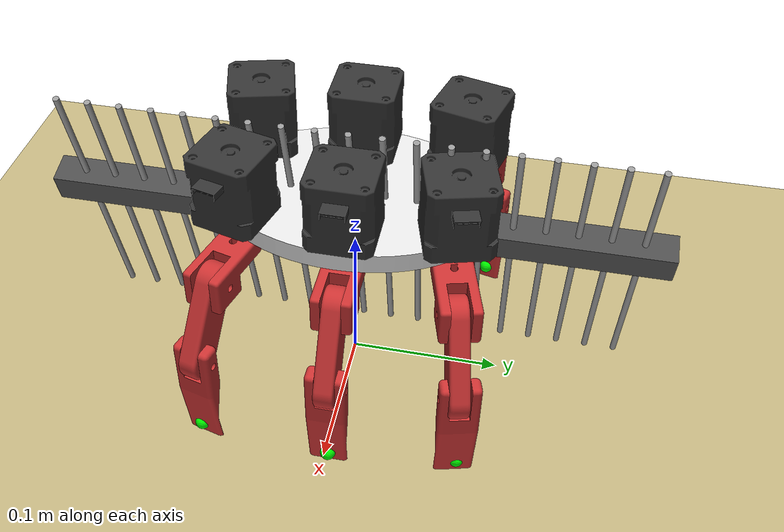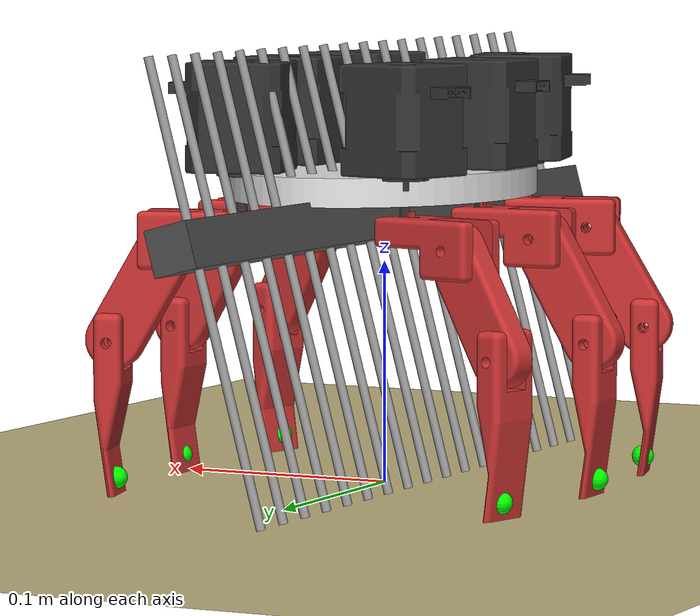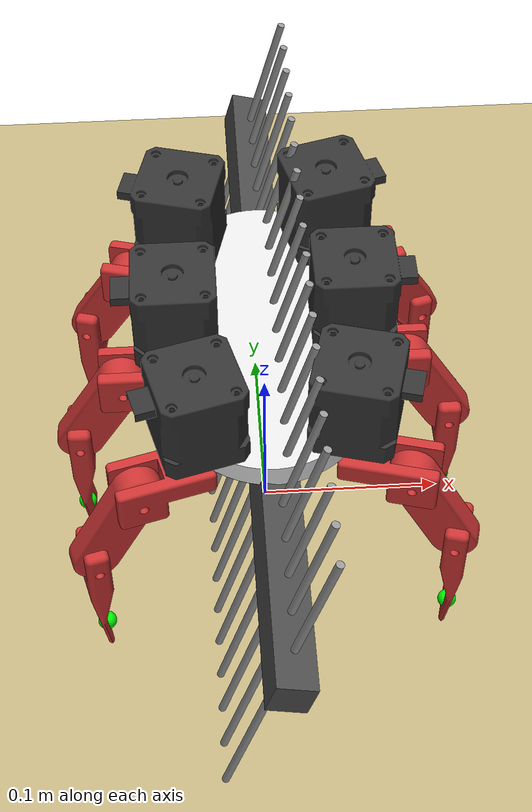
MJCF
<!-- runnning the enviorment: source mujoco_env/bin/activate -->
<!-- running the simulation: ./mujoco_env/bin/mjpython simulate_crab.py -->

<mujoco model="crab_leg_full_assembly">
    <compiler angle="degree" coordinate="local" meshdir="meshes/"/>
    <option gravity="0 0 -9.81" integrator="RK4" timestep="0.002"/>

    <asset>
        <material name="crab_r" rgba="0.8 0.2 0.2 1"/>
        <material name="crab_l" rgba="0.2 0.8 0.8 1"/>
        <material name="motor_grey" rgba="0.2 0.2 0.2 1"/>
        <material name="shell_white" rgba="0.9 0.9 0.9 1"/>
        <material name="sand_ground" rgba="0.76 0.70 0.50 1"/>

        <mesh name="shell_mesh" file="Shell.stl" scale="0.0254 0.0254 0.0254"/>
        <mesh name="nema17_mesh" file="Nema17.stl" scale="0.0254 0.0254 0.0254"/>
        <mesh name="femur_mesh" file="Femur.stl" scale="0.0254 0.0254 0.0254"/>
        <mesh name="merus_mesh" file="Merus.stl" scale="0.0254 0.0254 0.0254"/>
        <mesh name="dactyl_mesh" file="Dactyl.stl" scale="0.0254 0.0254 0.0254"/>
    </asset>

    <worldbody>
        <light diffuse=".5 .5 .5" pos="0 0 3" dir="0 0 -1"/>
        <!-- Collision ground (z=0) - where sand forces apply -->
        <geom name="ground" type="plane" size="2 2 0.1" material="sand_ground" contype="1" conaffinity="1"
              solref="0.04 1.5" solimp="0.9 0.99 0.001" friction="1.0 0.005 0.0001"/>
        <!-- Visual surface ground (z=0.01) - at penetration threshold, shows leg sinkage effect -->
        <geom name="ground_visual" type="plane" pos="0 0 0.01" size="2 2 0.1" material="sand_ground" contype="0" conaffinity="0"/>

        <body name="base_shell" pos="0 0 0.13">
            <freejoint/>
            <!-- Combined mass of motors, wood base, and electronics -->
            <geom name="shell_visual" type="mesh" mesh="shell_mesh" material="shell_white" mass="2.1" />
            <body name="sifter_assembly" pos="0 0 -0.01" euler="0 15 0">
                <geom name="rake_bar" type="box" size="0.01 0.20 0.01" rgba="0.3 0.3 0.3 1" mass="0.07"/>

                <geom name="tine_0" type="cylinder" size="0.002 0.10" pos="0 0.00 -0.02" euler="0 0 0" rgba="0.6 0.6 0.6 1" mass="0.005"/>

                <geom name="tine_l1" type="cylinder" size="0.002 0.10" pos="0 -0.02 -0.02" euler="0 0 0" rgba="0.6 0.6 0.6 1" mass="0.005"/>
                <geom name="tine_l2" type="cylinder" size="0.002 0.10" pos="0 -0.04 -0.02" euler="0 0 0" rgba="0.6 0.6 0.6 1" mass="0.005"/>
                <geom name="tine_l3" type="cylinder" size="0.002 0.10" pos="0 -0.06 -0.02" euler="0 0 0" rgba="0.6 0.6 0.6 1" mass="0.005"/>
                <geom name="tine_l4" type="cylinder" size="0.002 0.10" pos="0 -0.08 -0.02" euler="0 0 0" rgba="0.6 0.6 0.6 1" mass="0.005"/>
                <geom name="tine_l5" type="cylinder" size="0.002 0.10" pos="0 -0.10 -0.02" euler="0 0 0" rgba="0.6 0.6 0.6 1" mass="0.005"/>
                <geom name="tine_l6" type="cylinder" size="0.002 0.10" pos="0 -0.12 -0.02" euler="0 0 0" rgba="0.6 0.6 0.6 1" mass="0.005"/>
                <geom name="tine_l7" type="cylinder" size="0.002 0.10" pos="0 -0.14 -0.02" euler="0 0 0" rgba="0.6 0.6 0.6 1" mass="0.005"/>
                <geom name="tine_l8" type="cylinder" size="0.002 0.10" pos="0 -0.16 -0.02" euler="0 0 0" rgba="0.6 0.6 0.6 1" mass="0.005"/>
                <geom name="tine_l9" type="cylinder" size="0.002 0.10" pos="0 -0.18 -0.02" euler="0 0 0" rgba="0.6 0.6 0.6 1" mass="0.005"/>

                <geom name="tine_r1" type="cylinder" size="0.002 0.10" pos="0 0.02 -0.02" euler="0 0 0" rgba="0.6 0.6 0.6 1" mass="0.005"/>
                <geom name="tine_r2" type="cylinder" size="0.002 0.10" pos="0 0.04 -0.02" euler="0 0 0" rgba="0.6 0.6 0.6 1" mass="0.005"/>
                <geom name="tine_r3" type="cylinder" size="0.002 0.10" pos="0 0.06 -0.02" euler="0 0 0" rgba="0.6 0.6 0.6 1" mass="0.005"/>
                <geom name="tine_r4" type="cylinder" size="0.002 0.10" pos="0 0.08 -0.02" euler="0 0 0" rgba="0.6 0.6 0.6 1" mass="0.005"/>
                <geom name="tine_r5" type="cylinder" size="0.002 0.10" pos="0 0.10 -0.02" euler="0 0 0" rgba="0.6 0.6 0.6 1" mass="0.005"/>
                <geom name="tine_r6" type="cylinder" size="0.002 0.10" pos="0 0.12 -0.02" euler="0 0 0" rgba="0.6 0.6 0.6 1" mass="0.005"/>
                <geom name="tine_r7" type="cylinder" size="0.002 0.10" pos="0 0.14 -0.02" euler="0 0 0" rgba="0.6 0.6 0.6 1" mass="0.005"/>
                <geom name="tine_r8" type="cylinder" size="0.002 0.10" pos="0 0.16 -0.02" euler="0 0 0" rgba="0.6 0.6 0.6 1" mass="0.005"/>
                <geom name="tine_r9" type="cylinder" size="0.002 0.10" pos="0 0.18 -0.02" euler="0 0 0" rgba="0.6 0.6 0.6 1" mass="0.005"/>
            </body>
            <!-- RIGHT MIDDLE LEG -->
            <body name="motor_rm" pos="0 -0.025 0.04" euler="0 90 0">
                <geom name="motor_rm_vis" type="mesh" mesh="nema17_mesh" material="motor_grey"/>
                <body name="femur_rm" pos="0.035 0.041 0.07">
                    <joint name="hip_rm" type="hinge" axis="1 0 0" pos="0 -0.015 -0.03" range="-90 90"/>
                    <geom name="femur_rm_vis" type="mesh" mesh="femur_mesh" euler="0 180 0" material="crab_r"/>
                    <body name="merus_rm" pos="0.04 -0.025 0.03">
                        <joint name="knee_rm" type="hinge" axis="0 1 0" pos="-0.02 0 -0.02" range="-90 90"/>
                        <geom name="merus_rm_vis" type="mesh" mesh="merus_mesh" euler="0 60 90" material="crab_r"/>
                        <body name="dactyl_rm" pos="0.04 0.025 0.0075">
                            <joint name="ankle_rm" type="hinge" axis="0 1 0" pos="-0.01 -0.02 -0.005" range="-60 60"/>
                            <geom name="dactyl_rm_vis" type="mesh" mesh="dactyl_mesh" euler="0 -90 0" material="crab_r" contype="1" conaffinity="1"/>
                            <site name="tip_rm" pos="0.048 -0.0125 -0.005" size="0.005" rgba="0 1 0 1"/>
                        </body>
                    </body>
                </body>
            </body>

            <!-- RIGHT BACK LEG -->
            <body name="motor_rb" pos="-0.01 -0.08 0.04" euler="0 90 0">
                <geom name="motor_rb_vis" type="mesh" mesh="nema17_mesh" euler="15 0 0" material="motor_grey"/>
                <body name="femur_rb" pos="0.035 0.02 0.08">
                    <joint name="hip_rb" type="hinge" axis="1 0 0" pos="0 -0.015 -0.03" range="-90 90"/>
                    <geom name="femur_rb_vis" type="mesh" mesh="femur_mesh" euler="15 180 0" material="crab_r"/>
                    <body name="merus_rb" pos="0.04 -0.032 0.02">
                        <joint name="knee_rb" type="hinge" axis="0 1 0" pos="-0.02 0 -0.02" range="-90 90"/>
                        <geom name="merus_rb_vis" type="mesh" mesh="merus_mesh" euler="15 60 90" material="crab_r"/>
                        <body name="dactyl_rb" pos="0.04 0.022 0.015">
                            <joint name="ankle_rb" type="hinge" axis="0 1 0" pos="-0.01 -0.02 -0.005" range="-60 60"/>
                            <geom name="dactyl_rb_vis" type="mesh" mesh="dactyl_mesh" euler="15 -90 0" material="crab_r" contype="1" conaffinity="1"/>
                            <site name="tip_rb" pos="0.048 -0.0125 -0.01" size="0.005" rgba="0 1 0 1"/>
                        </body>
                    </body>
                </body>
            </body>
            <!-- RIGHT FRONT LEG -->
            <body name="motor_rf" pos="0 0.03 0.04" euler="0 90 0">
                <geom name="motor_rf_vis" type="mesh" mesh="nema17_mesh" euler="-15 0 0" material="motor_grey"/>
                <body name="femur_rf" pos="0.035 0.057 0.06">
                    <joint name="hip_rf" type="hinge" axis="1 0 0" pos="0 -0.015 -0.03" range="-90 90"/>
                    <geom name="femur_rf_vis" type="mesh" mesh="femur_mesh" euler="-15 180 0" material="crab_r"/>
                    <body name="merus_rf" pos="0.04 -0.0175 0.035">
                        <joint name="knee_rf" type="hinge" axis="0 1 0" pos="-0.02 0 -0.02" range="-90 90"/>
                        <geom name="merus_rf_vis" type="mesh" mesh="merus_mesh" euler="-15 60 90" material="crab_r"/>
                        <body name="dactyl_rf" pos="0.04 0.0275 0.001">
                            <joint name="ankle_rf" type="hinge" axis="0 1 0" pos="-0.01 -0.02 -0.005" range="-60 60"/>
                            <geom name="dactyl_rf_vis" type="mesh" mesh="dactyl_mesh" euler="-15 -90 0" material="crab_r" contype="1" conaffinity="1"/>
                            <site name="tip_rf" pos="0.048 -0.0125 -0.005" size="0.005" rgba="0 1 0 1"/>
                        </body>
                    </body>
                </body>
            </body>

            <!-- LEFT MIDDLE LEG — mirrors rm: motor euler "0 -90 180" handles
                the left-side flip; all child positions are identical to rm. -->
            <body name="motor_lm" pos="0 0.025 0.04" euler="0 -90 180">
                <geom name="motor_lm_vis" type="mesh" mesh="nema17_mesh" material="motor_grey"/>
                <body name="femur_lm" pos="0.035 0.041 0.07">
                    <joint name="hip_lm" type="hinge" axis="1 0 0" pos="0 -0.015 -0.03" range="-90 90"/>
                    <geom name="femur_lm_vis" type="mesh" mesh="femur_mesh" euler="0 180 0" material="crab_r"/>
                    <body name="merus_lm" pos="0.04 -0.025 0.03">
                        <joint name="knee_lm" type="hinge" axis="0 1 0" pos="-0.02 0 -0.02" range="-90 90"/>
                        <geom name="merus_lm_vis" type="mesh" mesh="merus_mesh" euler="0 60 90" material="crab_r"/>
                        <body name="dactyl_lm" pos="0.04 0.025 0.0075">
                            <joint name="ankle_lm" type="hinge" axis="0 1 0" pos="-0.01 -0.02 -0.005" range="-60 60"/>
                            <geom name="dactyl_lm_vis" type="mesh" mesh="dactyl_mesh" euler="0 -90 0" material="crab_r" contype="1" conaffinity="1"/>
                            <site name="tip_lm" pos="0.048 -0.0125 -0.005" size="0.005" rgba="0 1 0 1"/>
                        </body>
                    </body>
                </body>
            </body>
        <!-- LEFT BACK LEG -->
            <body name="motor_lb" pos="0 -0.03 0.04" euler="0 -90 180">
                <geom name="motor_lb_vis" type="mesh" mesh="nema17_mesh" euler="-15 0 0" material="motor_grey"/>
                <body name="femur_lb" pos="0.035 0.057 0.06">
                    <joint name="hip_lb" type="hinge" axis="1 0 0" pos="0 -0.015 -0.03" range="-90 90"/>
                    <geom name="femur_lb_vis" type="mesh" mesh="femur_mesh" euler="-15 180 0" material="crab_r"/>
                    <body name="merus_lb" pos="0.04 -0.0175 0.035">
                        <joint name="knee_lb" type="hinge" axis="0 1 0" pos="-0.02 0 -0.02" range="-90 90"/>
                        <geom name="merus_lb_vis" type="mesh" mesh="merus_mesh" euler="-15 60 90" material="crab_r"/>
                        <body name="dactyl_lb" pos="0.04 0.0275 0.001">
                            <joint name="ankle_lb" type="hinge" axis="0 1 0" pos="-0.01 -0.02 -0.005" range="-60 60"/>
                            <geom name="dactyl_lb_vis" type="mesh" mesh="dactyl_mesh" euler="-15 -90 0" material="crab_r" contype="1" conaffinity="1"/>
                            <site name="tip_lb" pos="0.048 -0.0125 -0.005" size="0.005" rgba="0 1 0 1"/>
                        </body>
                    </body>
                </body>
            </body>

            <!-- LEFT FRONT LEG -->
            <body name="motor_lf" pos="0.01 0.08 0.04" euler="0 -90 180">
                <geom name="motor_lf_vis" type="mesh" mesh="nema17_mesh" euler="15 0 0" material="motor_grey"/>
                <body name="femur_lf" pos="0.035 0.02 0.08">
                    <joint name="hip_lf" type="hinge" axis="1 0 0" pos="0 -0.015 -0.03" range="-90 90"/>
                    <geom name="femur_l_vis" type="mesh" mesh="femur_mesh" euler="15 180 0" material="crab_r"/>
                    <body name="merus_lf" pos="0.04 -0.032 0.02">
                        <joint name="knee_lf" type="hinge" axis="0 1 0" pos="-0.02 0 -0.02" range="-90 90"/>
                        <geom name="merus_lf_vis" type="mesh" mesh="merus_mesh" euler="15 60 90" material="crab_r"/>
                        <body name="dactyl_lf" pos="0.04 0.022 0.015">
                            <joint name="ankle_lf" type="hinge" axis="0 1 0" pos="-0.01 -0.02 -0.005" range="-60 60"/>
                            <geom name="dactyl_lf_vis" type="mesh" mesh="dactyl_mesh" euler="15 -90 0" material="crab_r" contype="1" conaffinity="1"/>
                            <site name="tip_lf" pos="0.048 -0.0125 -0.01" size="0.005" rgba="0 1 0 1"/>
                        </body>
                    </body>
                </body>
            </body>
        </body>
    </worldbody>

    <actuator>
        <!-- Right Legs Actuators -->
        <position name="hip_rm_srv" joint="hip_rm" kp="80"/>
        <position name="knee_rm_srv" joint="knee_rm" kp="60"/>
        <position name="ankle_rm_srv" joint="ankle_rm" kp="60"/>
        <position name="hip_rb_srv" joint="hip_rb" kp="80"/>
        <position name="knee_rb_srv" joint="knee_rb" kp="60"/>
        <position name="ankle_rb_srv" joint="ankle_rb" kp="60"/>
        <position name="hip_rf_srv" joint="hip_rf" kp="80"/>
        <position name="knee_rf_srv" joint="knee_rf" kp="60"/>
        <position name="ankle_rf_srv" joint="ankle_rf" kp="60"/>

        <!-- Left Legs Actuators -->
        <position name="hip_lm_srv" joint="hip_lm" kp="80"/>
        <position name="knee_lm_srv" joint="knee_lm" kp="60"/>
        <position name="ankle_lm_srv" joint="ankle_lm" kp="60"/>
        <position name="hip_lb_srv" joint="hip_lb" kp="80"/>
        <position name="knee_lb_srv" joint="knee_lb" kp="60"/>
        <position name="ankle_lb_srv" joint="ankle_lb" kp="60"/>
        <position name="hip_lf_srv" joint="hip_lf" kp="80"/>
        <position name="knee_lf_srv" joint="knee_lf" kp="60"/>
        <position name="ankle_lf_srv" joint="ankle_lf" kp="60"/>
    </actuator>

    <default>
        <!-- damping: energy dissipation in joints (higher = less oscillation)   -->
        <!-- armature: motor inertia (resists rapid velocity changes)            -->
        <joint damping="5.0" armature="0.1" stiffness="0"/>
        <!-- solref: contact resolution [timeconst dampratio]                    -->
        <!--   dampratio > 1.0 = overdamped contact = no bounce on landing       -->
        <!-- solimp: contact impedance [dmin dmax width]                         -->
        <geom solref="0.04 1.5" solimp="0.9 0.99 0.001"/>
    </default>

    <option gravity="0 0 -9.81" integrator="Euler" timestep="0.001"/>

    <contact>
        <!-- Right Leg Exclusions -->
        <exclude body1="motor_rm" body2="femur_rm"/>
        <exclude body1="femur_rm" body2="merus_rm"/>
        <exclude body1="merus_rm" body2="dactyl_rm"/>
        <exclude body1="motor_rb" body2="femur_rb"/>
        <exclude body1="femur_rb" body2="merus_rb"/>
        <exclude body1="merus_rb" body2="dactyl_rb"/>
        <exclude body1="motor_rf" body2="femur_rf"/>
        <exclude body1="femur_rf" body2="merus_rf"/>
        <exclude body1="merus_rf" body2="dactyl_rf"/>

        <!-- Left Leg Exclusions -->
        <exclude body1="motor_lm" body2="femur_lm"/>
        <exclude body1="femur_lm" body2="merus_lm"/>
        <exclude body1="merus_lm" body2="dactyl_lm"/>
        <exclude body1="motor_lb" body2="femur_lb"/>
        <exclude body1="femur_lb" body2="merus_lb"/>
        <exclude body1="merus_lb" body2="dactyl_lb"/>
        <exclude body1="motor_lf" body2="femur_lf"/>
        <exclude body1="femur_lf" body2="merus_lf"/>
        <exclude body1="merus_lf" body2="dactyl_lf"/>
    </contact>

</mujoco>
